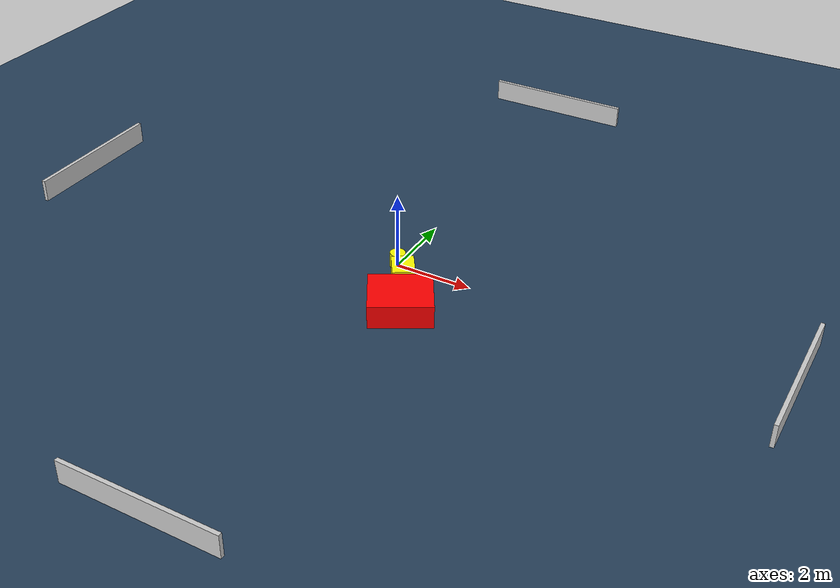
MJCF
<?xml version="1.0" ?>
<mujoco model="generated_environment">
  <option timestep="0.01" integrator="RK4" cone="elliptic"/>
  <default>
    <geom density="1"/>
  </default>
  <asset>
    <texture builtin="gradient" height="3072" name="skybox" rgb1="0.3 0.5 0.7" rgb2="0 0 0" type="skybox" width="512"/>
    <texture builtin="checker" height="300" name="groundplane" rgb1="0.2 0.3 0.4" rgb2="0.1 0.2 0.3" type="2d" width="300"/>
    <material name="groundplane" reflectance="0.2" texrepeat="5 5" texture="groundplane"/>
  </asset>
  <worldbody>
    <light dir="0 0 -1" directional="true" pos="0 0 1.5"/>
    <geom condim="3" friction="0.5 0.005 0.001" material="groundplane" name="floor" pos="0 0 0" size="0 0 0.05" type="plane"/>
    <body name="walls">
      <geom name="wall_1" condim="4" pos="-10.0 0.0 0.3" rgba="0.800000011920929 0.800000011920929 0.800000011920929 1.0" size="0.05 2.0 0.3" type="box"/>
      <geom name="wall_2" condim="4" pos="10.0 0.0 0.3" rgba="0.800000011920929 0.800000011920929 0.800000011920929 1.0" size="0.05 2.0 0.3" type="box"/>
      <geom name="wall_3" condim="4" pos="0.0 -10.0 0.3" rgba="0.800000011920929 0.800000011920929 0.800000011920929 1.0" size="2.0 0.05 0.3" type="box"/>
      <geom name="wall_4" condim="4" pos="0.0 10.0 0.3" rgba="0.800000011920929 0.800000011920929 0.800000011920929 1.0" size="2.0 0.05 0.3" type="box"/>
    </body>
    <body name="robot">
      <joint name="joint_x" type="slide" pos="0 0 0" axis="1 0 0"/>
      <joint name="joint_y" type="slide" pos="0 0 0" axis="0 1 0"/>
      <geom name="robot" type="cylinder" pos="0.0 0.0 0.2" size="0.2 0.2 0.0" mass="5.0" friction="1.0 0.005 0.0001" condim="4" rgba="1.0 1.0 0.0 1.0"/>
    </body>
    <body name="obstacle_1_movable">
      <geom name="obstacle_1_movable" condim="4" pos="0.5193687112450097 -0.6488785508578524 0.3" euler="0 0 302.61128871574135" friction="0.0 0.005 0.001" rgba="1.0 1.0 0.0 1.0" size="0.35702923481851545 0.28316208464710385 0.3" type="box" mass="0.1"/>
      <joint type="free"/>
    </body>
    <body name="obstacle_2_static">
      <geom name="obstacle_2_static" condim="4" pos="1.0179675820806726 -1.655781864024064 0.3" euler="0 0 299.87815775270514" friction="0.0 0.005 0.001" rgba="1.0 0.0 0.0 1.0" size="0.6914918389783562 0.790254205773091 0.3" type="box"/>
    </body>
  </worldbody>
  <actuator>
    <motor name="actuator_x" joint="joint_x" gear="1" ctrlrange="-1 1"/>
    <motor name="actuator_y" joint="joint_y" gear="1" ctrlrange="-1 1"/>
  </actuator>
</mujoco>
